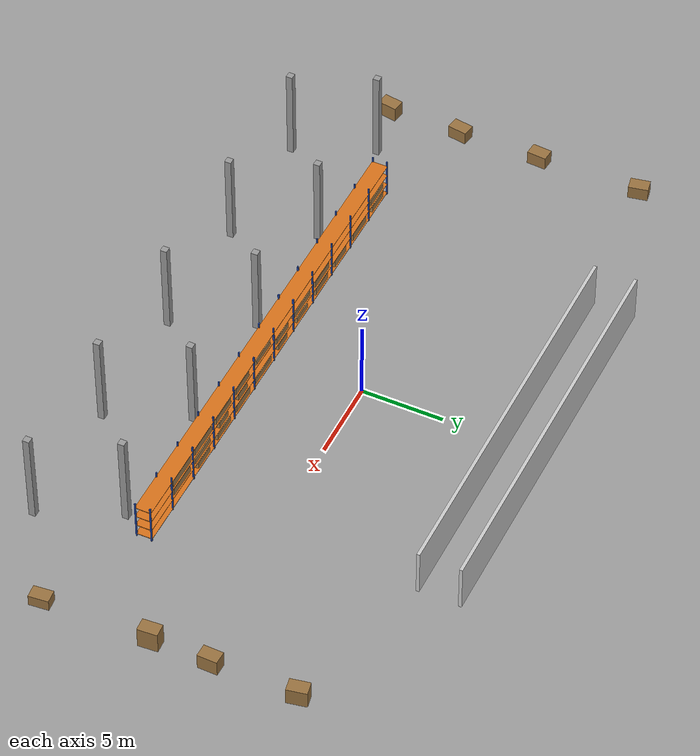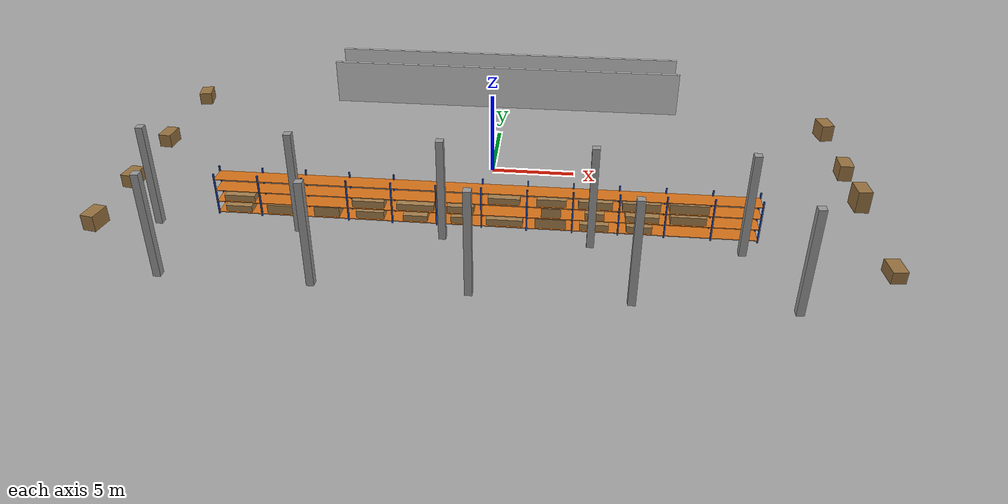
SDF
<sdf version="1.6">
 <world name="warehouse">
  <model name="shelf_row_3">
   <static>true</static>
   <link name="link">
    <visual name="up0_0_v">
     <pose>-15.0000 -6.4600 1.3000 0 0 0.0000</pose>
     <geometry><box><size>0.0800 0.0800 2.6000</size></box></geometry>
     <material>
      <ambient>0.15 0.3 0.7 1</ambient>
      <diffuse>0.15 0.3 0.7 1</diffuse>
      <specular>0.1 0.1 0.1 1</specular>
     </material>
    </visual>
    <collision name="up0_0_c">
     <pose>-15.0000 -6.4600 1.3000 0 0 0.0000</pose>
     <geometry><box><size>0.0800 0.0800 2.6000</size></box></geometry>
    </collision>
    <visual name="up0_2_v">
     <pose>-15.0000 -5.5400 1.3000 0 0 0.0000</pose>
     <geometry><box><size>0.0800 0.0800 2.6000</size></box></geometry>
     <material>
      <ambient>0.15 0.3 0.7 1</ambient>
      <diffuse>0.15 0.3 0.7 1</diffuse>
      <specular>0.1 0.1 0.1 1</specular>
     </material>
    </visual>
    <collision name="up0_2_c">
     <pose>-15.0000 -5.5400 1.3000 0 0 0.0000</pose>
     <geometry><box><size>0.0800 0.0800 2.6000</size></box></geometry>
    </collision>
    <visual name="up1_0_v">
     <pose>-12.5000 -6.4600 1.3000 0 0 0.0000</pose>
     <geometry><box><size>0.0800 0.0800 2.6000</size></box></geometry>
     <material>
      <ambient>0.15 0.3 0.7 1</ambient>
      <diffuse>0.15 0.3 0.7 1</diffuse>
      <specular>0.1 0.1 0.1 1</specular>
     </material>
    </visual>
    <collision name="up1_0_c">
     <pose>-12.5000 -6.4600 1.3000 0 0 0.0000</pose>
     <geometry><box><size>0.0800 0.0800 2.6000</size></box></geometry>
    </collision>
    <visual name="up1_2_v">
     <pose>-12.5000 -5.5400 1.3000 0 0 0.0000</pose>
     <geometry><box><size>0.0800 0.0800 2.6000</size></box></geometry>
     <material>
      <ambient>0.15 0.3 0.7 1</ambient>
      <diffuse>0.15 0.3 0.7 1</diffuse>
      <specular>0.1 0.1 0.1 1</specular>
     </material>
    </visual>
    <collision name="up1_2_c">
     <pose>-12.5000 -5.5400 1.3000 0 0 0.0000</pose>
     <geometry><box><size>0.0800 0.0800 2.6000</size></box></geometry>
    </collision>
    <visual name="up2_0_v">
     <pose>-10.0000 -6.4600 1.3000 0 0 0.0000</pose>
     <geometry><box><size>0.0800 0.0800 2.6000</size></box></geometry>
     <material>
      <ambient>0.15 0.3 0.7 1</ambient>
      <diffuse>0.15 0.3 0.7 1</diffuse>
      <specular>0.1 0.1 0.1 1</specular>
     </material>
    </visual>
    <collision name="up2_0_c">
     <pose>-10.0000 -6.4600 1.3000 0 0 0.0000</pose>
     <geometry><box><size>0.0800 0.0800 2.6000</size></box></geometry>
    </collision>
    <visual name="up2_2_v">
     <pose>-10.0000 -5.5400 1.3000 0 0 0.0000</pose>
     <geometry><box><size>0.0800 0.0800 2.6000</size></box></geometry>
     <material>
      <ambient>0.15 0.3 0.7 1</ambient>
      <diffuse>0.15 0.3 0.7 1</diffuse>
      <specular>0.1 0.1 0.1 1</specular>
     </material>
    </visual>
    <collision name="up2_2_c">
     <pose>-10.0000 -5.5400 1.3000 0 0 0.0000</pose>
     <geometry><box><size>0.0800 0.0800 2.6000</size></box></geometry>
    </collision>
    <visual name="up3_0_v">
     <pose>-7.5000 -6.4600 1.3000 0 0 0.0000</pose>
     <geometry><box><size>0.0800 0.0800 2.6000</size></box></geometry>
     <material>
      <ambient>0.15 0.3 0.7 1</ambient>
      <diffuse>0.15 0.3 0.7 1</diffuse>
      <specular>0.1 0.1 0.1 1</specular>
     </material>
    </visual>
    <collision name="up3_0_c">
     <pose>-7.5000 -6.4600 1.3000 0 0 0.0000</pose>
     <geometry><box><size>0.0800 0.0800 2.6000</size></box></geometry>
    </collision>
    <visual name="up3_2_v">
     <pose>-7.5000 -5.5400 1.3000 0 0 0.0000</pose>
     <geometry><box><size>0.0800 0.0800 2.6000</size></box></geometry>
     <material>
      <ambient>0.15 0.3 0.7 1</ambient>
      <diffuse>0.15 0.3 0.7 1</diffuse>
      <specular>0.1 0.1 0.1 1</specular>
     </material>
    </visual>
    <collision name="up3_2_c">
     <pose>-7.5000 -5.5400 1.3000 0 0 0.0000</pose>
     <geometry><box><size>0.0800 0.0800 2.6000</size></box></geometry>
    </collision>
    <visual name="up4_0_v">
     <pose>-5.0000 -6.4600 1.3000 0 0 0.0000</pose>
     <geometry><box><size>0.0800 0.0800 2.6000</size></box></geometry>
     <material>
      <ambient>0.15 0.3 0.7 1</ambient>
      <diffuse>0.15 0.3 0.7 1</diffuse>
      <specular>0.1 0.1 0.1 1</specular>
     </material>
    </visual>
    <collision name="up4_0_c">
     <pose>-5.0000 -6.4600 1.3000 0 0 0.0000</pose>
     <geometry><box><size>0.0800 0.0800 2.6000</size></box></geometry>
    </collision>
    <visual name="up4_2_v">
     <pose>-5.0000 -5.5400 1.3000 0 0 0.0000</pose>
     <geometry><box><size>0.0800 0.0800 2.6000</size></box></geometry>
     <material>
      <ambient>0.15 0.3 0.7 1</ambient>
      <diffuse>0.15 0.3 0.7 1</diffuse>
      <specular>0.1 0.1 0.1 1</specular>
     </material>
    </visual>
    <collision name="up4_2_c">
     <pose>-5.0000 -5.5400 1.3000 0 0 0.0000</pose>
     <geometry><box><size>0.0800 0.0800 2.6000</size></box></geometry>
    </collision>
    <visual name="up5_0_v">
     <pose>-2.5000 -6.4600 1.3000 0 0 0.0000</pose>
     <geometry><box><size>0.0800 0.0800 2.6000</size></box></geometry>
     <material>
      <ambient>0.15 0.3 0.7 1</ambient>
      <diffuse>0.15 0.3 0.7 1</diffuse>
      <specular>0.1 0.1 0.1 1</specular>
     </material>
    </visual>
    <collision name="up5_0_c">
     <pose>-2.5000 -6.4600 1.3000 0 0 0.0000</pose>
     <geometry><box><size>0.0800 0.0800 2.6000</size></box></geometry>
    </collision>
    <visual name="up5_2_v">
     <pose>-2.5000 -5.5400 1.3000 0 0 0.0000</pose>
     <geometry><box><size>0.0800 0.0800 2.6000</size></box></geometry>
     <material>
      <ambient>0.15 0.3 0.7 1</ambient>
      <diffuse>0.15 0.3 0.7 1</diffuse>
      <specular>0.1 0.1 0.1 1</specular>
     </material>
    </visual>
    <collision name="up5_2_c">
     <pose>-2.5000 -5.5400 1.3000 0 0 0.0000</pose>
     <geometry><box><size>0.0800 0.0800 2.6000</size></box></geometry>
    </collision>
    <visual name="up6_0_v">
     <pose>0.0000 -6.4600 1.3000 0 0 0.0000</pose>
     <geometry><box><size>0.0800 0.0800 2.6000</size></box></geometry>
     <material>
      <ambient>0.15 0.3 0.7 1</ambient>
      <diffuse>0.15 0.3 0.7 1</diffuse>
      <specular>0.1 0.1 0.1 1</specular>
     </material>
    </visual>
    <collision name="up6_0_c">
     <pose>0.0000 -6.4600 1.3000 0 0 0.0000</pose>
     <geometry><box><size>0.0800 0.0800 2.6000</size></box></geometry>
    </collision>
    <visual name="up6_2_v">
     <pose>0.0000 -5.5400 1.3000 0 0 0.0000</pose>
     <geometry><box><size>0.0800 0.0800 2.6000</size></box></geometry>
     <material>
      <ambient>0.15 0.3 0.7 1</ambient>
      <diffuse>0.15 0.3 0.7 1</diffuse>
      <specular>0.1 0.1 0.1 1</specular>
     </material>
    </visual>
    <collision name="up6_2_c">
     <pose>0.0000 -5.5400 1.3000 0 0 0.0000</pose>
     <geometry><box><size>0.0800 0.0800 2.6000</size></box></geometry>
    </collision>
    <visual name="up7_0_v">
     <pose>2.5000 -6.4600 1.3000 0 0 0.0000</pose>
     <geometry><box><size>0.0800 0.0800 2.6000</size></box></geometry>
     <material>
      <ambient>0.15 0.3 0.7 1</ambient>
      <diffuse>0.15 0.3 0.7 1</diffuse>
      <specular>0.1 0.1 0.1 1</specular>
     </material>
    </visual>
    <collision name="up7_0_c">
     <pose>2.5000 -6.4600 1.3000 0 0 0.0000</pose>
     <geometry><box><size>0.0800 0.0800 2.6000</size></box></geometry>
    </collision>
    <visual name="up7_2_v">
     <pose>2.5000 -5.5400 1.3000 0 0 0.0000</pose>
     <geometry><box><size>0.0800 0.0800 2.6000</size></box></geometry>
     <material>
      <ambient>0.15 0.3 0.7 1</ambient>
      <diffuse>0.15 0.3 0.7 1</diffuse>
      <specular>0.1 0.1 0.1 1</specular>
     </material>
    </visual>
    <collision name="up7_2_c">
     <pose>2.5000 -5.5400 1.3000 0 0 0.0000</pose>
     <geometry><box><size>0.0800 0.0800 2.6000</size></box></geometry>
    </collision>
    <visual name="up8_0_v">
     <pose>5.0000 -6.4600 1.3000 0 0 0.0000</pose>
     <geometry><box><size>0.0800 0.0800 2.6000</size></box></geometry>
     <material>
      <ambient>0.15 0.3 0.7 1</ambient>
      <diffuse>0.15 0.3 0.7 1</diffuse>
      <specular>0.1 0.1 0.1 1</specular>
     </material>
    </visual>
    <collision name="up8_0_c">
     <pose>5.0000 -6.4600 1.3000 0 0 0.0000</pose>
     <geometry><box><size>0.0800 0.0800 2.6000</size></box></geometry>
    </collision>
    <visual name="up8_2_v">
     <pose>5.0000 -5.5400 1.3000 0 0 0.0000</pose>
     <geometry><box><size>0.0800 0.0800 2.6000</size></box></geometry>
     <material>
      <ambient>0.15 0.3 0.7 1</ambient>
      <diffuse>0.15 0.3 0.7 1</diffuse>
      <specular>0.1 0.1 0.1 1</specular>
     </material>
    </visual>
    <collision name="up8_2_c">
     <pose>5.0000 -5.5400 1.3000 0 0 0.0000</pose>
     <geometry><box><size>0.0800 0.0800 2.6000</size></box></geometry>
    </collision>
    <visual name="up9_0_v">
     <pose>7.5000 -6.4600 1.3000 0 0 0.0000</pose>
     <geometry><box><size>0.0800 0.0800 2.6000</size></box></geometry>
     <material>
      <ambient>0.15 0.3 0.7 1</ambient>
      <diffuse>0.15 0.3 0.7 1</diffuse>
      <specular>0.1 0.1 0.1 1</specular>
     </material>
    </visual>
    <collision name="up9_0_c">
     <pose>7.5000 -6.4600 1.3000 0 0 0.0000</pose>
     <geometry><box><size>0.0800 0.0800 2.6000</size></box></geometry>
    </collision>
    <visual name="up9_2_v">
     <pose>7.5000 -5.5400 1.3000 0 0 0.0000</pose>
     <geometry><box><size>0.0800 0.0800 2.6000</size></box></geometry>
     <material>
      <ambient>0.15 0.3 0.7 1</ambient>
      <diffuse>0.15 0.3 0.7 1</diffuse>
      <specular>0.1 0.1 0.1 1</specular>
     </material>
    </visual>
    <collision name="up9_2_c">
     <pose>7.5000 -5.5400 1.3000 0 0 0.0000</pose>
     <geometry><box><size>0.0800 0.0800 2.6000</size></box></geometry>
    </collision>
    <visual name="up10_0_v">
     <pose>10.0000 -6.4600 1.3000 0 0 0.0000</pose>
     <geometry><box><size>0.0800 0.0800 2.6000</size></box></geometry>
     <material>
      <ambient>0.15 0.3 0.7 1</ambient>
      <diffuse>0.15 0.3 0.7 1</diffuse>
      <specular>0.1 0.1 0.1 1</specular>
     </material>
    </visual>
    <collision name="up10_0_c">
     <pose>10.0000 -6.4600 1.3000 0 0 0.0000</pose>
     <geometry><box><size>0.0800 0.0800 2.6000</size></box></geometry>
    </collision>
    <visual name="up10_2_v">
     <pose>10.0000 -5.5400 1.3000 0 0 0.0000</pose>
     <geometry><box><size>0.0800 0.0800 2.6000</size></box></geometry>
     <material>
      <ambient>0.15 0.3 0.7 1</ambient>
      <diffuse>0.15 0.3 0.7 1</diffuse>
      <specular>0.1 0.1 0.1 1</specular>
     </material>
    </visual>
    <collision name="up10_2_c">
     <pose>10.0000 -5.5400 1.3000 0 0 0.0000</pose>
     <geometry><box><size>0.0800 0.0800 2.6000</size></box></geometry>
    </collision>
    <visual name="up11_0_v">
     <pose>12.5000 -6.4600 1.3000 0 0 0.0000</pose>
     <geometry><box><size>0.0800 0.0800 2.6000</size></box></geometry>
     <material>
      <ambient>0.15 0.3 0.7 1</ambient>
      <diffuse>0.15 0.3 0.7 1</diffuse>
      <specular>0.1 0.1 0.1 1</specular>
     </material>
    </visual>
    <collision name="up11_0_c">
     <pose>12.5000 -6.4600 1.3000 0 0 0.0000</pose>
     <geometry><box><size>0.0800 0.0800 2.6000</size></box></geometry>
    </collision>
    <visual name="up11_2_v">
     <pose>12.5000 -5.5400 1.3000 0 0 0.0000</pose>
     <geometry><box><size>0.0800 0.0800 2.6000</size></box></geometry>
     <material>
      <ambient>0.15 0.3 0.7 1</ambient>
      <diffuse>0.15 0.3 0.7 1</diffuse>
      <specular>0.1 0.1 0.1 1</specular>
     </material>
    </visual>
    <collision name="up11_2_c">
     <pose>12.5000 -5.5400 1.3000 0 0 0.0000</pose>
     <geometry><box><size>0.0800 0.0800 2.6000</size></box></geometry>
    </collision>
    <visual name="up12_0_v">
     <pose>15.0000 -6.4600 1.3000 0 0 0.0000</pose>
     <geometry><box><size>0.0800 0.0800 2.6000</size></box></geometry>
     <material>
      <ambient>0.15 0.3 0.7 1</ambient>
      <diffuse>0.15 0.3 0.7 1</diffuse>
      <specular>0.1 0.1 0.1 1</specular>
     </material>
    </visual>
    <collision name="up12_0_c">
     <pose>15.0000 -6.4600 1.3000 0 0 0.0000</pose>
     <geometry><box><size>0.0800 0.0800 2.6000</size></box></geometry>
    </collision>
    <visual name="up12_2_v">
     <pose>15.0000 -5.5400 1.3000 0 0 0.0000</pose>
     <geometry><box><size>0.0800 0.0800 2.6000</size></box></geometry>
     <material>
      <ambient>0.15 0.3 0.7 1</ambient>
      <diffuse>0.15 0.3 0.7 1</diffuse>
      <specular>0.1 0.1 0.1 1</specular>
     </material>
    </visual>
    <collision name="up12_2_c">
     <pose>15.0000 -5.5400 1.3000 0 0 0.0000</pose>
     <geometry><box><size>0.0800 0.0800 2.6000</size></box></geometry>
    </collision>
    <visual name="beam0_v">
     <pose>0.0000 -6.0000 0.1500 0 0 0.0000</pose>
     <geometry><box><size>30.0000 1.0000 0.0400</size></box></geometry>
     <material>
      <ambient>0.85 0.45 0.1 1</ambient>
      <diffuse>0.85 0.45 0.1 1</diffuse>
      <specular>0.1 0.1 0.1 1</specular>
     </material>
    </visual>
    <collision name="beam0_c">
     <pose>0.0000 -6.0000 0.1500 0 0 0.0000</pose>
     <geometry><box><size>30.0000 1.0000 0.0400</size></box></geometry>
    </collision>
    <visual name="beam1_v">
     <pose>0.0000 -6.0000 0.8500 0 0 0.0000</pose>
     <geometry><box><size>30.0000 1.0000 0.0400</size></box></geometry>
     <material>
      <ambient>0.85 0.45 0.1 1</ambient>
      <diffuse>0.85 0.45 0.1 1</diffuse>
      <specular>0.1 0.1 0.1 1</specular>
     </material>
    </visual>
    <collision name="beam1_c">
     <pose>0.0000 -6.0000 0.8500 0 0 0.0000</pose>
     <geometry><box><size>30.0000 1.0000 0.0400</size></box></geometry>
    </collision>
    <visual name="beam2_v">
     <pose>0.0000 -6.0000 1.5500 0 0 0.0000</pose>
     <geometry><box><size>30.0000 1.0000 0.0400</size></box></geometry>
     <material>
      <ambient>0.85 0.45 0.1 1</ambient>
      <diffuse>0.85 0.45 0.1 1</diffuse>
      <specular>0.1 0.1 0.1 1</specular>
     </material>
    </visual>
    <collision name="beam2_c">
     <pose>0.0000 -6.0000 1.5500 0 0 0.0000</pose>
     <geometry><box><size>30.0000 1.0000 0.0400</size></box></geometry>
    </collision>
    <visual name="beam3_v">
     <pose>0.0000 -6.0000 2.2500 0 0 0.0000</pose>
     <geometry><box><size>30.0000 1.0000 0.0400</size></box></geometry>
     <material>
      <ambient>0.85 0.45 0.1 1</ambient>
      <diffuse>0.85 0.45 0.1 1</diffuse>
      <specular>0.1 0.1 0.1 1</specular>
     </material>
    </visual>
    <collision name="beam3_c">
     <pose>0.0000 -6.0000 2.2500 0 0 0.0000</pose>
     <geometry><box><size>30.0000 1.0000 0.0400</size></box></geometry>
    </collision>
    <visual name="pal0_0_v">
     <pose>-13.8355 -6.0000 0.3602 0 0 0.0000</pose>
     <geometry><box><size>1.4863 0.8500 0.3804</size></box></geometry>
     <material>
      <ambient>0.65 0.5 0.3 1</ambient>
      <diffuse>0.65 0.5 0.3 1</diffuse>
      <specular>0.1 0.1 0.1 1</specular>
     </material>
    </visual>
    <collision name="pal0_0_c">
     <pose>-13.8355 -6.0000 0.3602 0 0 0.0000</pose>
     <geometry><box><size>1.4863 0.8500 0.3804</size></box></geometry>
    </collision>
    <visual name="pal0_1_v">
     <pose>-13.6932 -6.0000 1.0541 0 0 0.0000</pose>
     <geometry><box><size>1.7364 0.8500 0.3683</size></box></geometry>
     <material>
      <ambient>0.65 0.5 0.3 1</ambient>
      <diffuse>0.65 0.5 0.3 1</diffuse>
      <specular>0.1 0.1 0.1 1</specular>
     </material>
    </visual>
    <collision name="pal0_1_c">
     <pose>-13.6932 -6.0000 1.0541 0 0 0.0000</pose>
     <geometry><box><size>1.7364 0.8500 0.3683</size></box></geometry>
    </collision>
    <visual name="pal1_0_v">
     <pose>-11.3214 -6.0000 0.4345 0 0 0.0000</pose>
     <geometry><box><size>1.7263 0.8500 0.5290</size></box></geometry>
     <material>
      <ambient>0.65 0.5 0.3 1</ambient>
      <diffuse>0.65 0.5 0.3 1</diffuse>
      <specular>0.1 0.1 0.1 1</specular>
     </material>
    </visual>
    <collision name="pal1_0_c">
     <pose>-11.3214 -6.0000 0.4345 0 0 0.0000</pose>
     <geometry><box><size>1.7263 0.8500 0.5290</size></box></geometry>
    </collision>
    <visual name="pal2_0_v">
     <pose>-8.7525 -6.0000 0.4641 0 0 0.0000</pose>
     <geometry><box><size>1.4381 0.8500 0.5881</size></box></geometry>
     <material>
      <ambient>0.65 0.5 0.3 1</ambient>
      <diffuse>0.65 0.5 0.3 1</diffuse>
      <specular>0.1 0.1 0.1 1</specular>
     </material>
    </visual>
    <collision name="pal2_0_c">
     <pose>-8.7525 -6.0000 0.4641 0 0 0.0000</pose>
     <geometry><box><size>1.4381 0.8500 0.5881</size></box></geometry>
    </collision>
    <visual name="pal3_0_v">
     <pose>-6.2822 -6.0000 0.3989 0 0 0.0000</pose>
     <geometry><box><size>1.5672 0.8500 0.4579</size></box></geometry>
     <material>
      <ambient>0.65 0.5 0.3 1</ambient>
      <diffuse>0.65 0.5 0.3 1</diffuse>
      <specular>0.1 0.1 0.1 1</specular>
     </material>
    </visual>
    <collision name="pal3_0_c">
     <pose>-6.2822 -6.0000 0.3989 0 0 0.0000</pose>
     <geometry><box><size>1.5672 0.8500 0.4579</size></box></geometry>
    </collision>
    <visual name="pal3_1_v">
     <pose>-6.3461 -6.0000 1.0848 0 0 0.0000</pose>
     <geometry><box><size>1.7944 0.8500 0.4296</size></box></geometry>
     <material>
      <ambient>0.65 0.5 0.3 1</ambient>
      <diffuse>0.65 0.5 0.3 1</diffuse>
      <specular>0.1 0.1 0.1 1</specular>
     </material>
    </visual>
    <collision name="pal3_1_c">
     <pose>-6.3461 -6.0000 1.0848 0 0 0.0000</pose>
     <geometry><box><size>1.7944 0.8500 0.4296</size></box></geometry>
    </collision>
    <visual name="pal4_0_v">
     <pose>-3.7252 -6.0000 0.3473 0 0 0.0000</pose>
     <geometry><box><size>1.3646 0.8500 0.3545</size></box></geometry>
     <material>
      <ambient>0.65 0.5 0.3 1</ambient>
      <diffuse>0.65 0.5 0.3 1</diffuse>
      <specular>0.1 0.1 0.1 1</specular>
     </material>
    </visual>
    <collision name="pal4_0_c">
     <pose>-3.7252 -6.0000 0.3473 0 0 0.0000</pose>
     <geometry><box><size>1.3646 0.8500 0.3545</size></box></geometry>
    </collision>
    <visual name="pal4_1_v">
     <pose>-3.6923 -6.0000 1.0530 0 0 0.0000</pose>
     <geometry><box><size>2.0836 0.8500 0.3661</size></box></geometry>
     <material>
      <ambient>0.65 0.5 0.3 1</ambient>
      <diffuse>0.65 0.5 0.3 1</diffuse>
      <specular>0.1 0.1 0.1 1</specular>
     </material>
    </visual>
    <collision name="pal4_1_c">
     <pose>-3.6923 -6.0000 1.0530 0 0 0.0000</pose>
     <geometry><box><size>2.0836 0.8500 0.3661</size></box></geometry>
    </collision>
    <visual name="pal5_0_v">
     <pose>-1.1942 -6.0000 0.3782 0 0 0.0000</pose>
     <geometry><box><size>1.0435 0.8500 0.4164</size></box></geometry>
     <material>
      <ambient>0.65 0.5 0.3 1</ambient>
      <diffuse>0.65 0.5 0.3 1</diffuse>
      <specular>0.1 0.1 0.1 1</specular>
     </material>
    </visual>
    <collision name="pal5_0_c">
     <pose>-1.1942 -6.0000 0.3782 0 0 0.0000</pose>
     <geometry><box><size>1.0435 0.8500 0.4164</size></box></geometry>
    </collision>
    <visual name="pal5_1_v">
     <pose>-1.1677 -6.0000 1.0612 0 0 0.0000</pose>
     <geometry><box><size>1.4645 0.8500 0.3824</size></box></geometry>
     <material>
      <ambient>0.65 0.5 0.3 1</ambient>
      <diffuse>0.65 0.5 0.3 1</diffuse>
      <specular>0.1 0.1 0.1 1</specular>
     </material>
    </visual>
    <collision name="pal5_1_c">
     <pose>-1.1677 -6.0000 1.0612 0 0 0.0000</pose>
     <geometry><box><size>1.4645 0.8500 0.3824</size></box></geometry>
    </collision>
    <visual name="pal6_0_v">
     <pose>1.2641 -6.0000 0.3637 0 0 0.0000</pose>
     <geometry><box><size>2.0111 0.8500 0.3873</size></box></geometry>
     <material>
      <ambient>0.65 0.5 0.3 1</ambient>
      <diffuse>0.65 0.5 0.3 1</diffuse>
      <specular>0.1 0.1 0.1 1</specular>
     </material>
    </visual>
    <collision name="pal6_0_c">
     <pose>1.2641 -6.0000 0.3637 0 0 0.0000</pose>
     <geometry><box><size>2.0111 0.8500 0.3873</size></box></geometry>
    </collision>
    <visual name="pal6_2_v">
     <pose>1.2351 -6.0000 1.7522 0 0 0.0000</pose>
     <geometry><box><size>1.7570 0.8500 0.3644</size></box></geometry>
     <material>
      <ambient>0.65 0.5 0.3 1</ambient>
      <diffuse>0.65 0.5 0.3 1</diffuse>
      <specular>0.1 0.1 0.1 1</specular>
     </material>
    </visual>
    <collision name="pal6_2_c">
     <pose>1.2351 -6.0000 1.7522 0 0 0.0000</pose>
     <geometry><box><size>1.7570 0.8500 0.3644</size></box></geometry>
    </collision>
    <visual name="pal7_0_v">
     <pose>3.8103 -6.0000 0.4623 0 0 0.0000</pose>
     <geometry><box><size>1.6979 0.8500 0.5846</size></box></geometry>
     <material>
      <ambient>0.65 0.5 0.3 1</ambient>
      <diffuse>0.65 0.5 0.3 1</diffuse>
      <specular>0.1 0.1 0.1 1</specular>
     </material>
    </visual>
    <collision name="pal7_0_c">
     <pose>3.8103 -6.0000 0.4623 0 0 0.0000</pose>
     <geometry><box><size>1.6979 0.8500 0.5846</size></box></geometry>
    </collision>
    <visual name="pal7_1_v">
     <pose>3.8226 -6.0000 1.1520 0 0 0.0000</pose>
     <geometry><box><size>1.0733 0.8500 0.5641</size></box></geometry>
     <material>
      <ambient>0.65 0.5 0.3 1</ambient>
      <diffuse>0.65 0.5 0.3 1</diffuse>
      <specular>0.1 0.1 0.1 1</specular>
     </material>
    </visual>
    <collision name="pal7_1_c">
     <pose>3.8226 -6.0000 1.1520 0 0 0.0000</pose>
     <geometry><box><size>1.0733 0.8500 0.5641</size></box></geometry>
    </collision>
    <visual name="pal7_2_v">
     <pose>3.8353 -6.0000 1.7874 0 0 0.0000</pose>
     <geometry><box><size>1.6084 0.8500 0.4348</size></box></geometry>
     <material>
      <ambient>0.65 0.5 0.3 1</ambient>
      <diffuse>0.65 0.5 0.3 1</diffuse>
      <specular>0.1 0.1 0.1 1</specular>
     </material>
    </visual>
    <collision name="pal7_2_c">
     <pose>3.8353 -6.0000 1.7874 0 0 0.0000</pose>
     <geometry><box><size>1.6084 0.8500 0.4348</size></box></geometry>
    </collision>
    <visual name="pal8_0_v">
     <pose>6.1977 -6.0000 0.3612 0 0 0.0000</pose>
     <geometry><box><size>1.5796 0.8500 0.3823</size></box></geometry>
     <material>
      <ambient>0.65 0.5 0.3 1</ambient>
      <diffuse>0.65 0.5 0.3 1</diffuse>
      <specular>0.1 0.1 0.1 1</specular>
     </material>
    </visual>
    <collision name="pal8_0_c">
     <pose>6.1977 -6.0000 0.3612 0 0 0.0000</pose>
     <geometry><box><size>1.5796 0.8500 0.3823</size></box></geometry>
    </collision>
    <visual name="pal8_1_v">
     <pose>6.1904 -6.0000 1.0652 0 0 0.0000</pose>
     <geometry><box><size>1.0554 0.8500 0.3904</size></box></geometry>
     <material>
      <ambient>0.65 0.5 0.3 1</ambient>
      <diffuse>0.65 0.5 0.3 1</diffuse>
      <specular>0.1 0.1 0.1 1</specular>
     </material>
    </visual>
    <collision name="pal8_1_c">
     <pose>6.1904 -6.0000 1.0652 0 0 0.0000</pose>
     <geometry><box><size>1.0554 0.8500 0.3904</size></box></geometry>
    </collision>
    <visual name="pal8_2_v">
     <pose>6.2080 -6.0000 1.7831 0 0 0.0000</pose>
     <geometry><box><size>1.8354 0.8500 0.4263</size></box></geometry>
     <material>
      <ambient>0.65 0.5 0.3 1</ambient>
      <diffuse>0.65 0.5 0.3 1</diffuse>
      <specular>0.1 0.1 0.1 1</specular>
     </material>
    </visual>
    <collision name="pal8_2_c">
     <pose>6.2080 -6.0000 1.7831 0 0 0.0000</pose>
     <geometry><box><size>1.8354 0.8500 0.4263</size></box></geometry>
    </collision>
    <visual name="pal9_0_v">
     <pose>8.6536 -6.0000 0.3672 0 0 0.0000</pose>
     <geometry><box><size>1.3817 0.8500 0.3945</size></box></geometry>
     <material>
      <ambient>0.65 0.5 0.3 1</ambient>
      <diffuse>0.65 0.5 0.3 1</diffuse>
      <specular>0.1 0.1 0.1 1</specular>
     </material>
    </visual>
    <collision name="pal9_0_c">
     <pose>8.6536 -6.0000 0.3672 0 0 0.0000</pose>
     <geometry><box><size>1.3817 0.8500 0.3945</size></box></geometry>
    </collision>
    <visual name="pal9_1_v">
     <pose>8.7602 -6.0000 1.0469 0 0 0.0000</pose>
     <geometry><box><size>1.8064 0.8500 0.3538</size></box></geometry>
     <material>
      <ambient>0.65 0.5 0.3 1</ambient>
      <diffuse>0.65 0.5 0.3 1</diffuse>
      <specular>0.1 0.1 0.1 1</specular>
     </material>
    </visual>
    <collision name="pal9_1_c">
     <pose>8.7602 -6.0000 1.0469 0 0 0.0000</pose>
     <geometry><box><size>1.8064 0.8500 0.3538</size></box></geometry>
    </collision>
    <visual name="pal9_2_v">
     <pose>8.6713 -6.0000 1.8043 0 0 0.0000</pose>
     <geometry><box><size>2.0281 0.8500 0.4687</size></box></geometry>
     <material>
      <ambient>0.65 0.5 0.3 1</ambient>
      <diffuse>0.65 0.5 0.3 1</diffuse>
      <specular>0.1 0.1 0.1 1</specular>
     </material>
    </visual>
    <collision name="pal9_2_c">
     <pose>8.6713 -6.0000 1.8043 0 0 0.0000</pose>
     <geometry><box><size>2.0281 0.8500 0.4687</size></box></geometry>
    </collision>
    <visual name="pal10_1_v">
     <pose>11.2286 -6.0000 1.1069 0 0 0.0000</pose>
     <geometry><box><size>1.9181 0.8500 0.4738</size></box></geometry>
     <material>
      <ambient>0.65 0.5 0.3 1</ambient>
      <diffuse>0.65 0.5 0.3 1</diffuse>
      <specular>0.1 0.1 0.1 1</specular>
     </material>
    </visual>
    <collision name="pal10_1_c">
     <pose>11.2286 -6.0000 1.1069 0 0 0.0000</pose>
     <geometry><box><size>1.9181 0.8500 0.4738</size></box></geometry>
    </collision>
    <visual name="pal10_2_v">
     <pose>11.2185 -6.0000 1.8310 0 0 0.0000</pose>
     <geometry><box><size>2.0807 0.8500 0.5219</size></box></geometry>
     <material>
      <ambient>0.65 0.5 0.3 1</ambient>
      <diffuse>0.65 0.5 0.3 1</diffuse>
      <specular>0.1 0.1 0.1 1</specular>
     </material>
    </visual>
    <collision name="pal10_2_c">
     <pose>11.2185 -6.0000 1.8310 0 0 0.0000</pose>
     <geometry><box><size>2.0807 0.8500 0.5219</size></box></geometry>
    </collision>
   </link>
  </model>
  <model name="featureless_corridor">
   <static>true</static>
   <link name="link">
    <visual name="fw0_v">
     <pose>0.0000 9.0000 1.5000 0 0 0.0000</pose>
     <geometry><box><size>24.0000 0.2000 3.0000</size></box></geometry>
     <material>
      <ambient>0.8 0.8 0.8 1</ambient>
      <diffuse>0.8 0.8 0.8 1</diffuse>
      <specular>0.1 0.1 0.1 1</specular>
     </material>
    </visual>
    <collision name="fw0_c">
     <pose>0.0000 9.0000 1.5000 0 0 0.0000</pose>
     <geometry><box><size>24.0000 0.2000 3.0000</size></box></geometry>
    </collision>
    <visual name="fw1_v">
     <pose>0.0000 11.5000 1.5000 0 0 0.0000</pose>
     <geometry><box><size>24.0000 0.2000 3.0000</size></box></geometry>
     <material>
      <ambient>0.8 0.8 0.8 1</ambient>
      <diffuse>0.8 0.8 0.8 1</diffuse>
      <specular>0.1 0.1 0.1 1</specular>
     </material>
    </visual>
    <collision name="fw1_c">
     <pose>0.0000 11.5000 1.5000 0 0 0.0000</pose>
     <geometry><box><size>24.0000 0.2000 3.0000</size></box></geometry>
    </collision>
   </link>
  </model>
  <model name="clutter">
   <static>true</static>
   <link name="link">
    <visual name="col_s0_v">
     <pose>-16.0000 -12.3000 3.0000 0 0 0.0000</pose>
     <geometry><box><size>0.4000 0.4000 6.0000</size></box></geometry>
     <material>
      <ambient>0.6 0.6 0.6 1</ambient>
      <diffuse>0.6 0.6 0.6 1</diffuse>
      <specular>0.1 0.1 0.1 1</specular>
     </material>
    </visual>
    <collision name="col_s0_c">
     <pose>-16.0000 -12.3000 3.0000 0 0 0.0000</pose>
     <geometry><box><size>0.4000 0.4000 6.0000</size></box></geometry>
    </collision>
    <visual name="col_m0_v">
     <pose>-18.0000 -7.6000 3.0000 0 0 0.0000</pose>
     <geometry><box><size>0.4000 0.4000 6.0000</size></box></geometry>
     <material>
      <ambient>0.6 0.6 0.6 1</ambient>
      <diffuse>0.6 0.6 0.6 1</diffuse>
      <specular>0.1 0.1 0.1 1</specular>
     </material>
    </visual>
    <collision name="col_m0_c">
     <pose>-18.0000 -7.6000 3.0000 0 0 0.0000</pose>
     <geometry><box><size>0.4000 0.4000 6.0000</size></box></geometry>
    </collision>
    <visual name="col_s1_v">
     <pose>-8.0000 -12.3000 3.0000 0 0 0.0000</pose>
     <geometry><box><size>0.4000 0.4000 6.0000</size></box></geometry>
     <material>
      <ambient>0.6 0.6 0.6 1</ambient>
      <diffuse>0.6 0.6 0.6 1</diffuse>
      <specular>0.1 0.1 0.1 1</specular>
     </material>
    </visual>
    <collision name="col_s1_c">
     <pose>-8.0000 -12.3000 3.0000 0 0 0.0000</pose>
     <geometry><box><size>0.4000 0.4000 6.0000</size></box></geometry>
    </collision>
    <visual name="col_m1_v">
     <pose>-10.0000 -7.6000 3.0000 0 0 0.0000</pose>
     <geometry><box><size>0.4000 0.4000 6.0000</size></box></geometry>
     <material>
      <ambient>0.6 0.6 0.6 1</ambient>
      <diffuse>0.6 0.6 0.6 1</diffuse>
      <specular>0.1 0.1 0.1 1</specular>
     </material>
    </visual>
    <collision name="col_m1_c">
     <pose>-10.0000 -7.6000 3.0000 0 0 0.0000</pose>
     <geometry><box><size>0.4000 0.4000 6.0000</size></box></geometry>
    </collision>
    <visual name="col_s2_v">
     <pose>0.0000 -12.3000 3.0000 0 0 0.0000</pose>
     <geometry><box><size>0.4000 0.4000 6.0000</size></box></geometry>
     <material>
      <ambient>0.6 0.6 0.6 1</ambient>
      <diffuse>0.6 0.6 0.6 1</diffuse>
      <specular>0.1 0.1 0.1 1</specular>
     </material>
    </visual>
    <collision name="col_s2_c">
     <pose>0.0000 -12.3000 3.0000 0 0 0.0000</pose>
     <geometry><box><size>0.4000 0.4000 6.0000</size></box></geometry>
    </collision>
    <visual name="col_m2_v">
     <pose>-2.0000 -7.6000 3.0000 0 0 0.0000</pose>
     <geometry><box><size>0.4000 0.4000 6.0000</size></box></geometry>
     <material>
      <ambient>0.6 0.6 0.6 1</ambient>
      <diffuse>0.6 0.6 0.6 1</diffuse>
      <specular>0.1 0.1 0.1 1</specular>
     </material>
    </visual>
    <collision name="col_m2_c">
     <pose>-2.0000 -7.6000 3.0000 0 0 0.0000</pose>
     <geometry><box><size>0.4000 0.4000 6.0000</size></box></geometry>
    </collision>
    <visual name="col_s3_v">
     <pose>8.0000 -12.3000 3.0000 0 0 0.0000</pose>
     <geometry><box><size>0.4000 0.4000 6.0000</size></box></geometry>
     <material>
      <ambient>0.6 0.6 0.6 1</ambient>
      <diffuse>0.6 0.6 0.6 1</diffuse>
      <specular>0.1 0.1 0.1 1</specular>
     </material>
    </visual>
    <collision name="col_s3_c">
     <pose>8.0000 -12.3000 3.0000 0 0 0.0000</pose>
     <geometry><box><size>0.4000 0.4000 6.0000</size></box></geometry>
    </collision>
    <visual name="col_m3_v">
     <pose>6.0000 -7.6000 3.0000 0 0 0.0000</pose>
     <geometry><box><size>0.4000 0.4000 6.0000</size></box></geometry>
     <material>
      <ambient>0.6 0.6 0.6 1</ambient>
      <diffuse>0.6 0.6 0.6 1</diffuse>
      <specular>0.1 0.1 0.1 1</specular>
     </material>
    </visual>
    <collision name="col_m3_c">
     <pose>6.0000 -7.6000 3.0000 0 0 0.0000</pose>
     <geometry><box><size>0.4000 0.4000 6.0000</size></box></geometry>
    </collision>
    <visual name="col_s4_v">
     <pose>16.0000 -12.3000 3.0000 0 0 0.0000</pose>
     <geometry><box><size>0.4000 0.4000 6.0000</size></box></geometry>
     <material>
      <ambient>0.6 0.6 0.6 1</ambient>
      <diffuse>0.6 0.6 0.6 1</diffuse>
      <specular>0.1 0.1 0.1 1</specular>
     </material>
    </visual>
    <collision name="col_s4_c">
     <pose>16.0000 -12.3000 3.0000 0 0 0.0000</pose>
     <geometry><box><size>0.4000 0.4000 6.0000</size></box></geometry>
    </collision>
    <visual name="col_m4_v">
     <pose>14.0000 -7.6000 3.0000 0 0 0.0000</pose>
     <geometry><box><size>0.4000 0.4000 6.0000</size></box></geometry>
     <material>
      <ambient>0.6 0.6 0.6 1</ambient>
      <diffuse>0.6 0.6 0.6 1</diffuse>
      <specular>0.1 0.1 0.1 1</specular>
     </material>
    </visual>
    <collision name="col_m4_c">
     <pose>14.0000 -7.6000 3.0000 0 0 0.0000</pose>
     <geometry><box><size>0.4000 0.4000 6.0000</size></box></geometry>
    </collision>
    <visual name="pallet_w0_v">
     <pose>-21.4000 -8.3049 0.4821 0 0 -0.1782</pose>
     <geometry><box><size>0.8000 1.2000 0.9642</size></box></geometry>
     <material>
      <ambient>0.6 0.45 0.25 1</ambient>
      <diffuse>0.6 0.45 0.25 1</diffuse>
      <specular>0.1 0.1 0.1 1</specular>
     </material>
    </visual>
    <collision name="pallet_w0_c">
     <pose>-21.4000 -8.3049 0.4821 0 0 -0.1782</pose>
     <geometry><box><size>0.8000 1.2000 0.9642</size></box></geometry>
    </collision>
    <visual name="pallet_e0_v">
     <pose>21.4000 -8.8586 0.3584 0 0 0.0964</pose>
     <geometry><box><size>0.8000 1.2000 0.7168</size></box></geometry>
     <material>
      <ambient>0.6 0.45 0.25 1</ambient>
      <diffuse>0.6 0.45 0.25 1</diffuse>
      <specular>0.1 0.1 0.1 1</specular>
     </material>
    </visual>
    <collision name="pallet_e0_c">
     <pose>21.4000 -8.8586 0.3584 0 0 0.0964</pose>
     <geometry><box><size>0.8000 1.2000 0.7168</size></box></geometry>
    </collision>
    <visual name="pallet_w1_v">
     <pose>-21.4000 -3.6735 0.4150 0 0 -0.1662</pose>
     <geometry><box><size>0.8000 1.2000 0.8300</size></box></geometry>
     <material>
      <ambient>0.6 0.45 0.25 1</ambient>
      <diffuse>0.6 0.45 0.25 1</diffuse>
      <specular>0.1 0.1 0.1 1</specular>
     </material>
    </visual>
    <collision name="pallet_w1_c">
     <pose>-21.4000 -3.6735 0.4150 0 0 -0.1662</pose>
     <geometry><box><size>0.8000 1.2000 0.8300</size></box></geometry>
    </collision>
    <visual name="pallet_e1_v">
     <pose>21.4000 -2.2589 0.6786 0 0 0.0682</pose>
     <geometry><box><size>0.8000 1.2000 1.3571</size></box></geometry>
     <material>
      <ambient>0.6 0.45 0.25 1</ambient>
      <diffuse>0.6 0.45 0.25 1</diffuse>
      <specular>0.1 0.1 0.1 1</specular>
     </material>
    </visual>
    <collision name="pallet_e1_c">
     <pose>21.4000 -2.2589 0.6786 0 0 0.0682</pose>
     <geometry><box><size>0.8000 1.2000 1.3571</size></box></geometry>
    </collision>
    <visual name="pallet_w2_v">
     <pose>-21.4000 1.4844 0.4269 0 0 -0.0828</pose>
     <geometry><box><size>0.8000 1.2000 0.8537</size></box></geometry>
     <material>
      <ambient>0.6 0.45 0.25 1</ambient>
      <diffuse>0.6 0.45 0.25 1</diffuse>
      <specular>0.1 0.1 0.1 1</specular>
     </material>
    </visual>
    <collision name="pallet_w2_c">
     <pose>-21.4000 1.4844 0.4269 0 0 -0.0828</pose>
     <geometry><box><size>0.8000 1.2000 0.8537</size></box></geometry>
    </collision>
    <visual name="pallet_e2_v">
     <pose>21.4000 1.3151 0.5068 0 0 -0.0217</pose>
     <geometry><box><size>0.8000 1.2000 1.0135</size></box></geometry>
     <material>
      <ambient>0.6 0.45 0.25 1</ambient>
      <diffuse>0.6 0.45 0.25 1</diffuse>
      <specular>0.1 0.1 0.1 1</specular>
     </material>
    </visual>
    <collision name="pallet_e2_c">
     <pose>21.4000 1.3151 0.5068 0 0 -0.0217</pose>
     <geometry><box><size>0.8000 1.2000 1.0135</size></box></geometry>
    </collision>
    <visual name="pallet_w3_v">
     <pose>-21.4000 7.9236 0.4185 0 0 0.1890</pose>
     <geometry><box><size>0.8000 1.2000 0.8369</size></box></geometry>
     <material>
      <ambient>0.6 0.45 0.25 1</ambient>
      <diffuse>0.6 0.45 0.25 1</diffuse>
      <specular>0.1 0.1 0.1 1</specular>
     </material>
    </visual>
    <collision name="pallet_w3_c">
     <pose>-21.4000 7.9236 0.4185 0 0 0.1890</pose>
     <geometry><box><size>0.8000 1.2000 0.8369</size></box></geometry>
    </collision>
    <visual name="pallet_e3_v">
     <pose>21.4000 6.4889 0.5462 0 0 0.1863</pose>
     <geometry><box><size>0.8000 1.2000 1.0924</size></box></geometry>
     <material>
      <ambient>0.6 0.45 0.25 1</ambient>
      <diffuse>0.6 0.45 0.25 1</diffuse>
      <specular>0.1 0.1 0.1 1</specular>
     </material>
    </visual>
    <collision name="pallet_e3_c">
     <pose>21.4000 6.4889 0.5462 0 0 0.1863</pose>
     <geometry><box><size>0.8000 1.2000 1.0924</size></box></geometry>
    </collision>
   </link>
  </model>
 </world>
</sdf>
